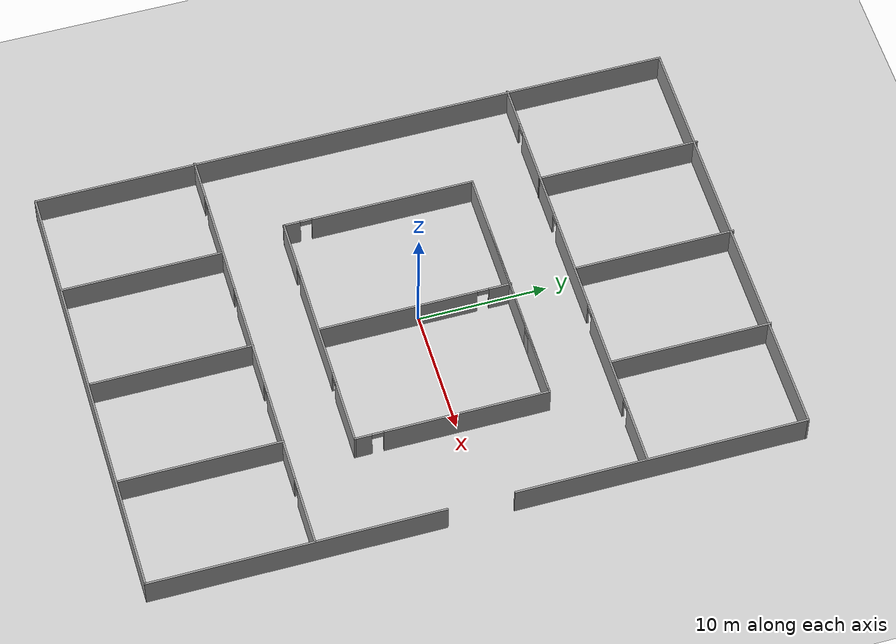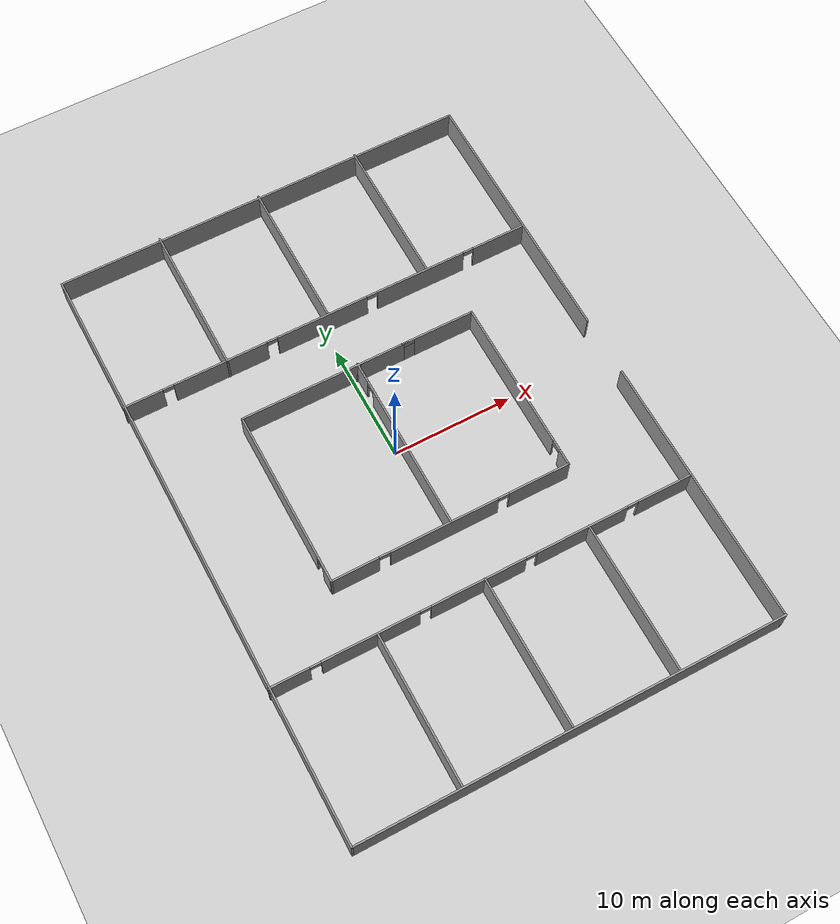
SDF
<sdf version="1.6">
 <world name="default">
  <light name="sun" type="directional">
   <pose>0 0 10 0 -0 0</pose>
   <diffuse>0.8 0.8 0.8 1</diffuse>
   <specular>0.1 0.1 0.1 1</specular>
   <attenuation>
    <range>1000</range>
    <constant>0.9</constant>
    <linear>0.01</linear>
    <quadratic>0.001</quadratic>
   </attenuation>
   <direction>-0.5 0.5 -1</direction>
  </light>
  <model name="ground_plane">
   <static>1</static>
   <link name="link">
    <collision name="collision">
     <geometry><plane><normal>0 0 1</normal><size>100 100</size></plane></geometry>
     <surface><friction><ode><mu>100</mu><mu2>50</mu2></ode></friction></surface>
    </collision>
    <visual name="visual">
     <cast_shadows>0</cast_shadows>
     <geometry><plane><normal>0 0 1</normal><size>100 100</size></plane></geometry>
     <material>
      <script><uri>file://media/materials/scripts/gazebo.material</uri><name>Gazebo/Grey</name></script>
     </material>
    </visual>
   </link>
  </model>
  <gravity>0 0 -9.8</gravity>
  <magnetic_field>6e-06 2.3e-05 -4.2e-05</magnetic_field>
  <atmosphere type="adiabatic"/>
  <physics name="default_physics" default="0" type="ode">
   <max_step_size>0.001</max_step_size>
   <real_time_factor>1</real_time_factor>
   <real_time_update_rate>1000</real_time_update_rate>
  </physics>
  <scene><ambient>0.4 0.4 0.4 1</ambient><background>0.7 0.7 0.7 1</background><shadows>1</shadows></scene>
  <spherical_coordinates>
   <surface_model>EARTH_WGS84</surface_model>
   <latitude_deg>0</latitude_deg>
   <longitude_deg>0</longitude_deg>
   <elevation>0</elevation>
   <heading_deg>0</heading_deg>
  </spherical_coordinates>
  <model name="navigation-rooms">
   <pose>0.564641 -0.417032 0 0 -0 0</pose>
   <link name="Wall_32">
    <collision name="Wall_32_Collision">
     <geometry><box><size>22.5 0.15 2.5</size></box></geometry>
     <pose>0 0 1.25 0 -0 0</pose>
    </collision>
    <visual name="Wall_32_Visual">
     <pose>0 0 1.25 0 -0 0</pose>
     <geometry><box><size>22.5 0.15 2.5</size></box></geometry>
     <material>
      <script><uri>file://media/materials/scripts/gazebo.material</uri><name>Gazebo/Grey</name></script>
      <ambient>1 1 1 1</ambient>
     </material>
    </visual>
    <pose>17.4791 13.6488 0 0 -0 1.5708</pose>
   </link>
   <link name="Wall_33">
    <collision name="Wall_33_Collision">
     <geometry><box><size>35 0.15 2.5</size></box></geometry>
     <pose>0 0 1.25 0 -0 0</pose>
    </collision>
    <visual name="Wall_33_Visual">
     <pose>0 0 1.25 0 -0 0</pose>
     <geometry><box><size>35 0.15 2.5</size></box></geometry>
     <material>
      <script><uri>file://media/materials/scripts/gazebo.material</uri><name>Gazebo/Grey</name></script>
      <ambient>1 1 1 1</ambient>
     </material>
    </visual>
    <pose>0.054081 24.8238 0 0 -0 3.14159</pose>
   </link>
   <link name="Wall_34">
    <collision name="Wall_34_Collision">
     <geometry><box><size>50 0.15 2.5</size></box></geometry>
     <pose>0 0 1.25 0 -0 0</pose>
    </collision>
    <visual name="Wall_34_Visual">
     <pose>0 0 1.25 0 -0 0</pose>
     <geometry><box><size>50 0.15 2.5</size></box></geometry>
     <material>
      <script><uri>file://media/materials/scripts/gazebo.material</uri><name>Gazebo/Grey</name></script>
      <ambient>1 1 1 1</ambient>
     </material>
    </visual>
    <pose>-17.3709 -0.101245 0 0 0 -1.5708</pose>
   </link>
   <link name="Wall_35">
    <collision name="Wall_35_Collision">
     <geometry><box><size>35 0.15 2.5</size></box></geometry>
     <pose>0 0 1.25 0 -0 0</pose>
    </collision>
    <visual name="Wall_35_Visual">
     <pose>0 0 1.25 0 -0 0</pose>
     <geometry><box><size>35 0.15 2.5</size></box></geometry>
     <material>
      <script><uri>file://media/materials/scripts/gazebo.material</uri><name>Gazebo/Grey</name></script>
      <ambient>1 1 1 1</ambient>
     </material>
    </visual>
    <pose>0.054081 -25.0262 0 0 -0 0</pose>
   </link>
   <link name="Wall_36">
    <collision name="Wall_36_Collision">
     <geometry><box><size>22.5 0.15 2.5</size></box></geometry>
     <pose>0 0 1.25 0 -0 0</pose>
    </collision>
    <visual name="Wall_36_Visual">
     <pose>0 0 1.25 0 -0 0</pose>
     <geometry><box><size>22.5 0.15 2.5</size></box></geometry>
     <material>
      <script><uri>file://media/materials/scripts/gazebo.material</uri><name>Gazebo/Grey</name></script>
      <ambient>1 1 1 1</ambient>
     </material>
    </visual>
    <pose>17.4791 -13.8512 0 0 -0 1.5708</pose>
   </link>
   <link name="Wall_38">
    <pose>-0.054083 12.4759 0 0 -0 0</pose>
    <visual name="Wall_38_Visual_0">
     <pose>-15.8438 0 1.25 0 -0 0</pose>
     <geometry><box><size>3.31249 0.15 2.5</size></box></geometry>
     <material>
      <script><uri>file://media/materials/scripts/gazebo.material</uri><name>Gazebo/Grey</name></script>
      <ambient>1 1 1 1</ambient>
     </material>
    </visual>
    <collision name="Wall_38_Collision_0">
     <geometry><box><size>3.31249 0.15 2.5</size></box></geometry>
     <pose>-15.8438 0 1.25 0 -0 0</pose>
    </collision>
    <visual name="Wall_38_Visual_1">
     <pose>-9.32126 0 1.25 0 -0 0</pose>
     <geometry><box><size>7.93251 0.15 2.5</size></box></geometry>
     <material>
      <script><uri>file://media/materials/scripts/gazebo.material</uri><name>Gazebo/Grey</name></script>
      <ambient>1 1 1 1</ambient>
     </material>
    </visual>
    <collision name="Wall_38_Collision_1">
     <geometry><box><size>7.93251 0.15 2.5</size></box></geometry>
     <pose>-9.32126 0 1.25 0 -0 0</pose>
    </collision>
    <visual name="Wall_38_Visual_2">
     <pose>-0.544929 0 1.25 0 -0 0</pose>
     <geometry><box><size>7.82014 0.15 2.5</size></box></geometry>
     <material>
      <script><uri>file://media/materials/scripts/gazebo.material</uri><name>Gazebo/Grey</name></script>
      <ambient>1 1 1 1</ambient>
     </material>
    </visual>
    <collision name="Wall_38_Collision_2">
     <geometry><box><size>7.82014 0.15 2.5</size></box></geometry>
     <pose>-0.544929 0 1.25 0 -0 0</pose>
    </collision>
    <visual name="Wall_38_Visual_3">
     <pose>8.1415 0 1.25 0 -0 0</pose>
     <geometry><box><size>7.75272 0.15 2.5</size></box></geometry>
     <material>
      <script><uri>file://media/materials/scripts/gazebo.material</uri><name>Gazebo/Grey</name></script>
      <ambient>1 1 1 1</ambient>
     </material>
    </visual>
    <collision name="Wall_38_Collision_3">
     <geometry><box><size>7.75272 0.15 2.5</size></box></geometry>
     <pose>8.1415 0 1.25 0 -0 0</pose>
    </collision>
    <visual name="Wall_38_Visual_4">
     <pose>15.2089 0 1.25 0 -0 0</pose>
     <geometry><box><size>4.58214 0.15 2.5</size></box></geometry>
     <material>
      <script><uri>file://media/materials/scripts/gazebo.material</uri><name>Gazebo/Grey</name></script>
      <ambient>1 1 1 1</ambient>
     </material>
    </visual>
    <collision name="Wall_38_Collision_4">
     <geometry><box><size>4.58214 0.15 2.5</size></box></geometry>
     <pose>15.2089 0 1.25 0 -0 0</pose>
    </collision>
    <visual name="Wall_38_Visual_5">
     <pose>-13.7375 0 2.25 0 -0 0</pose>
     <geometry><box><size>0.9 0.15 0.5</size></box></geometry>
     <material>
      <script><uri>file://media/materials/scripts/gazebo.material</uri><name>Gazebo/Grey</name></script>
      <ambient>1 1 1 1</ambient>
     </material>
    </visual>
    <collision name="Wall_38_Collision_5">
     <geometry><box><size>0.9 0.15 0.5</size></box></geometry>
     <pose>-13.7375 0 2.25 0 -0 0</pose>
    </collision>
    <visual name="Wall_38_Visual_6">
     <pose>-4.905 0 2.25 0 -0 0</pose>
     <geometry><box><size>0.9 0.15 0.5</size></box></geometry>
     <material>
      <script><uri>file://media/materials/scripts/gazebo.material</uri><name>Gazebo/Grey</name></script>
      <ambient>1 1 1 1</ambient>
     </material>
    </visual>
    <collision name="Wall_38_Collision_6">
     <geometry><box><size>0.9 0.15 0.5</size></box></geometry>
     <pose>-4.905 0 2.25 0 -0 0</pose>
    </collision>
    <visual name="Wall_38_Visual_7">
     <pose>3.81514 0 2.25 0 -0 0</pose>
     <geometry><box><size>0.9 0.15 0.5</size></box></geometry>
     <material>
      <script><uri>file://media/materials/scripts/gazebo.material</uri><name>Gazebo/Grey</name></script>
      <ambient>1 1 1 1</ambient>
     </material>
    </visual>
    <collision name="Wall_38_Collision_7">
     <geometry><box><size>0.9 0.15 0.5</size></box></geometry>
     <pose>3.81514 0 2.25 0 -0 0</pose>
    </collision>
    <visual name="Wall_38_Visual_8">
     <pose>12.4679 0 2.25 0 -0 0</pose>
     <geometry><box><size>0.9 0.15 0.5</size></box></geometry>
     <material>
      <script><uri>file://media/materials/scripts/gazebo.material</uri><name>Gazebo/Grey</name></script>
      <ambient>1 1 1 1</ambient>
     </material>
    </visual>
    <collision name="Wall_38_Collision_8">
     <geometry><box><size>0.9 0.15 0.5</size></box></geometry>
     <pose>12.4679 0 2.25 0 -0 0</pose>
    </collision>
   </link>
   <link name="Wall_40">
    <pose>-0.033664 -12.5285 0 0 -0 0</pose>
    <visual name="Wall_40_Visual_0">
     <pose>-15.85 0 1.25 0 -0 0</pose>
     <geometry><box><size>3.29995 0.15 2.5</size></box></geometry>
     <material>
      <script><uri>file://media/materials/scripts/gazebo.material</uri><name>Gazebo/Grey</name></script>
      <ambient>1 1 1 1</ambient>
     </material>
    </visual>
    <collision name="Wall_40_Collision_0">
     <geometry><box><size>3.29995 0.15 2.5</size></box></geometry>
     <pose>-15.85 0 1.25 0 -0 0</pose>
    </collision>
    <visual name="Wall_40_Visual_1">
     <pose>-9.34594 0 1.25 0 -0 0</pose>
     <geometry><box><size>7.90824 0.15 2.5</size></box></geometry>
     <material>
      <script><uri>file://media/materials/scripts/gazebo.material</uri><name>Gazebo/Grey</name></script>
      <ambient>1 1 1 1</ambient>
     </material>
    </visual>
    <collision name="Wall_40_Collision_1">
     <geometry><box><size>7.90824 0.15 2.5</size></box></geometry>
     <pose>-9.34594 0 1.25 0 -0 0</pose>
    </collision>
    <visual name="Wall_40_Visual_2">
     <pose>-0.564072 0 1.25 0 -0 0</pose>
     <geometry><box><size>7.85549 0.15 2.5</size></box></geometry>
     <material>
      <script><uri>file://media/materials/scripts/gazebo.material</uri><name>Gazebo/Grey</name></script>
      <ambient>1 1 1 1</ambient>
     </material>
    </visual>
    <collision name="Wall_40_Collision_2">
     <geometry><box><size>7.85549 0.15 2.5</size></box></geometry>
     <pose>-0.564072 0 1.25 0 -0 0</pose>
    </collision>
    <visual name="Wall_40_Visual_3">
     <pose>8.1211 0 1.25 0 -0 0</pose>
     <geometry><box><size>7.71484 0.15 2.5</size></box></geometry>
     <material>
      <script><uri>file://media/materials/scripts/gazebo.material</uri><name>Gazebo/Grey</name></script>
      <ambient>1 1 1 1</ambient>
     </material>
    </visual>
    <collision name="Wall_40_Collision_3">
     <geometry><box><size>7.71484 0.15 2.5</size></box></geometry>
     <pose>8.1211 0 1.25 0 -0 0</pose>
    </collision>
    <visual name="Wall_40_Visual_4">
     <pose>15.1893 0 1.25 0 -0 0</pose>
     <geometry><box><size>4.62148 0.15 2.5</size></box></geometry>
     <material>
      <script><uri>file://media/materials/scripts/gazebo.material</uri><name>Gazebo/Grey</name></script>
      <ambient>1 1 1 1</ambient>
     </material>
    </visual>
    <collision name="Wall_40_Collision_4">
     <geometry><box><size>4.62148 0.15 2.5</size></box></geometry>
     <pose>15.1893 0 1.25 0 -0 0</pose>
    </collision>
    <visual name="Wall_40_Visual_5">
     <pose>-13.7501 0 2.25 0 -0 0</pose>
     <geometry><box><size>0.9 0.15 0.5</size></box></geometry>
     <material>
      <script><uri>file://media/materials/scripts/gazebo.material</uri><name>Gazebo/Grey</name></script>
      <ambient>1 1 1 1</ambient>
     </material>
    </visual>
    <collision name="Wall_40_Collision_5">
     <geometry><box><size>0.9 0.15 0.5</size></box></geometry>
     <pose>-13.7501 0 2.25 0 -0 0</pose>
    </collision>
    <visual name="Wall_40_Visual_6">
     <pose>-4.94182 0 2.25 0 -0 0</pose>
     <geometry><box><size>0.9 0.15 0.5</size></box></geometry>
     <material>
      <script><uri>file://media/materials/scripts/gazebo.material</uri><name>Gazebo/Grey</name></script>
      <ambient>1 1 1 1</ambient>
     </material>
    </visual>
    <collision name="Wall_40_Collision_6">
     <geometry><box><size>0.9 0.15 0.5</size></box></geometry>
     <pose>-4.94182 0 2.25 0 -0 0</pose>
    </collision>
    <visual name="Wall_40_Visual_7">
     <pose>3.81367 0 2.25 0 -0 0</pose>
     <geometry><box><size>0.9 0.15 0.5</size></box></geometry>
     <material>
      <script><uri>file://media/materials/scripts/gazebo.material</uri><name>Gazebo/Grey</name></script>
      <ambient>1 1 1 1</ambient>
     </material>
    </visual>
    <collision name="Wall_40_Collision_7">
     <geometry><box><size>0.9 0.15 0.5</size></box></geometry>
     <pose>3.81367 0 2.25 0 -0 0</pose>
    </collision>
    <visual name="Wall_40_Visual_8">
     <pose>12.4285 0 2.25 0 -0 0</pose>
     <geometry><box><size>0.9 0.15 0.5</size></box></geometry>
     <material>
      <script><uri>file://media/materials/scripts/gazebo.material</uri><name>Gazebo/Grey</name></script>
      <ambient>1 1 1 1</ambient>
     </material>
    </visual>
    <collision name="Wall_40_Collision_8">
     <geometry><box><size>0.9 0.15 0.5</size></box></geometry>
     <pose>12.4285 0 2.25 0 -0 0</pose>
    </collision>
   </link>
   <link name="Wall_42">
    <collision name="Wall_42_Collision">
     <geometry><box><size>12.75 0.15 2.5</size></box></geometry>
     <pose>0 0 1.25 0 -0 0</pose>
    </collision>
    <visual name="Wall_42_Visual">
     <pose>0 0 1.25 0 -0 0</pose>
     <geometry><box><size>12.75 0.15 2.5</size></box></geometry>
     <material>
      <script><uri>file://media/materials/scripts/gazebo.material</uri><name>Gazebo/Grey</name></script>
      <ambient>1 1 1 1</ambient>
     </material>
    </visual>
    <pose>-8.83026 18.7262 0 0 0 -1.5708</pose>
   </link>
   <link name="Wall_44">
    <collision name="Wall_44_Collision">
     <geometry><box><size>12.5 0.15 2.5</size></box></geometry>
     <pose>0 0 1.25 0 -0 0</pose>
    </collision>
    <visual name="Wall_44_Visual">
     <pose>0 0 1.25 0 -0 0</pose>
     <geometry><box><size>12.5 0.15 2.5</size></box></geometry>
     <material>
      <script><uri>file://media/materials/scripts/gazebo.material</uri><name>Gazebo/Grey</name></script>
      <ambient>1 1 1 1</ambient>
     </material>
    </visual>
    <pose>8.67407 18.7805 0 0 0 -1.5708</pose>
   </link>
   <link name="Wall_46">
    <collision name="Wall_46_Collision">
     <geometry><box><size>12.5 0.15 2.5</size></box></geometry>
     <pose>0 0 1.25 0 -0 0</pose>
    </collision>
    <visual name="Wall_46_Visual">
     <pose>0 0 1.25 0 -0 0</pose>
     <geometry><box><size>12.5 0.15 2.5</size></box></geometry>
     <material>
      <script><uri>file://media/materials/scripts/gazebo.material</uri><name>Gazebo/Grey</name></script>
      <ambient>1 1 1 1</ambient>
     </material>
    </visual>
    <pose>-0.093563 18.8194 0 0 0 -1.5708</pose>
   </link>
   <link name="Wall_48">
    <collision name="Wall_48_Collision">
     <geometry><box><size>12.5 0.15 2.5</size></box></geometry>
     <pose>0 0 1.25 0 -0 0</pose>
    </collision>
    <visual name="Wall_48_Visual">
     <pose>0 0 1.25 0 -0 0</pose>
     <geometry><box><size>12.5 0.15 2.5</size></box></geometry>
     <material>
      <script><uri>file://media/materials/scripts/gazebo.material</uri><name>Gazebo/Grey</name></script>
      <ambient>1 1 1 1</ambient>
     </material>
    </visual>
    <pose>-8.84337 -18.8321 0 0 -0 1.5708</pose>
   </link>
   <link name="Wall_50">
    <collision name="Wall_50_Collision">
     <geometry><box><size>12.5 0.15 2.5</size></box></geometry>
     <pose>0 0 1.25 0 -0 0</pose>
    </collision>
    <visual name="Wall_50_Visual">
     <pose>0 0 1.25 0 -0 0</pose>
     <geometry><box><size>12.5 0.15 2.5</size></box></geometry>
     <material>
      <script><uri>file://media/materials/scripts/gazebo.material</uri><name>Gazebo/Grey</name></script>
      <ambient>1 1 1 1</ambient>
     </material>
    </visual>
    <pose>-0.087878 -18.6818 0 0 0 -1.5708</pose>
   </link>
   <link name="Wall_52">
    <collision name="Wall_52_Collision">
     <geometry><box><size>12.5 0.15 2.5</size></box></geometry>
     <pose>0 0 1.25 0 -0 0</pose>
    </collision>
    <visual name="Wall_52_Visual">
     <pose>0 0 1.25 0 -0 0</pose>
     <geometry><box><size>12.5 0.15 2.5</size></box></geometry>
     <material>
      <script><uri>file://media/materials/scripts/gazebo.material</uri><name>Gazebo/Grey</name></script>
      <ambient>1 1 1 1</ambient>
     </material>
    </visual>
    <pose>8.65003 -18.6818 0 0 0 -1.5708</pose>
   </link>
   <link name="Wall_54">
    <pose>9.88724 -0.041191 0 0 0 -1.5708</pose>
    <visual name="Wall_54_Visual_0">
     <pose>-1.13699 0 1.25 0 -0 0</pose>
     <geometry><box><size>12.726 0.15 2.5</size></box></geometry>
     <material>
      <script><uri>file://media/materials/scripts/gazebo.material</uri><name>Gazebo/Grey</name></script>
      <ambient>1 1 1 1</ambient>
     </material>
    </visual>
    <collision name="Wall_54_Collision_0">
     <geometry><box><size>12.726 0.15 2.5</size></box></geometry>
     <pose>-1.13699 0 1.25 0 -0 0</pose>
    </collision>
    <visual name="Wall_54_Visual_1">
     <pose>6.81301 0 1.25 0 -0 0</pose>
     <geometry><box><size>1.37398 0.15 2.5</size></box></geometry>
     <material>
      <script><uri>file://media/materials/scripts/gazebo.material</uri><name>Gazebo/Grey</name></script>
      <ambient>1 1 1 1</ambient>
     </material>
    </visual>
    <collision name="Wall_54_Collision_1">
     <geometry><box><size>1.37398 0.15 2.5</size></box></geometry>
     <pose>6.81301 0 1.25 0 -0 0</pose>
    </collision>
    <visual name="Wall_54_Visual_2">
     <pose>5.67602 0 2.25 0 -0 0</pose>
     <geometry><box><size>0.9 0.15 0.5</size></box></geometry>
     <material>
      <script><uri>file://media/materials/scripts/gazebo.material</uri><name>Gazebo/Grey</name></script>
      <ambient>1 1 1 1</ambient>
     </material>
    </visual>
    <collision name="Wall_54_Collision_2">
     <geometry><box><size>0.9 0.15 0.5</size></box></geometry>
     <pose>5.67602 0 2.25 0 -0 0</pose>
    </collision>
   </link>
   <link name="Wall_56">
    <pose>-0.037764 -7.46619 0 0 -0 3.14159</pose>
    <visual name="Wall_56_Visual_0">
     <pose>-7.41141 0 1.25 0 -0 0</pose>
     <geometry><box><size>5.17717 0.15 2.5</size></box></geometry>
     <material>
      <script><uri>file://media/materials/scripts/gazebo.material</uri><name>Gazebo/Grey</name></script>
      <ambient>1 1 1 1</ambient>
     </material>
    </visual>
    <collision name="Wall_56_Collision_0">
     <geometry><box><size>5.17717 0.15 2.5</size></box></geometry>
     <pose>-7.41141 0 1.25 0 -0 0</pose>
    </collision>
    <visual name="Wall_56_Visual_1">
     <pose>0.599768 0 1.25 0 -0 0</pose>
     <geometry><box><size>9.04519 0.15 2.5</size></box></geometry>
     <material>
      <script><uri>file://media/materials/scripts/gazebo.material</uri><name>Gazebo/Grey</name></script>
      <ambient>1 1 1 1</ambient>
     </material>
    </visual>
    <collision name="Wall_56_Collision_1">
     <geometry><box><size>9.04519 0.15 2.5</size></box></geometry>
     <pose>0.599768 0 1.25 0 -0 0</pose>
    </collision>
    <visual name="Wall_56_Visual_2">
     <pose>8.01118 0 1.25 0 -0 0</pose>
     <geometry><box><size>3.97763 0.15 2.5</size></box></geometry>
     <material>
      <script><uri>file://media/materials/scripts/gazebo.material</uri><name>Gazebo/Grey</name></script>
      <ambient>1 1 1 1</ambient>
     </material>
    </visual>
    <collision name="Wall_56_Collision_2">
     <geometry><box><size>3.97763 0.15 2.5</size></box></geometry>
     <pose>8.01118 0 1.25 0 -0 0</pose>
    </collision>
    <visual name="Wall_56_Visual_3">
     <pose>-4.37283 0 2.25 0 -0 0</pose>
     <geometry><box><size>0.9 0.15 0.5</size></box></geometry>
     <material>
      <script><uri>file://media/materials/scripts/gazebo.material</uri><name>Gazebo/Grey</name></script>
      <ambient>1 1 1 1</ambient>
     </material>
    </visual>
    <collision name="Wall_56_Collision_3">
     <geometry><box><size>0.9 0.15 0.5</size></box></geometry>
     <pose>-4.37283 0 2.25 0 -0 0</pose>
    </collision>
    <visual name="Wall_56_Visual_4">
     <pose>5.57236 0 2.25 0 -0 0</pose>
     <geometry><box><size>0.9 0.15 0.5</size></box></geometry>
     <material>
      <script><uri>file://media/materials/scripts/gazebo.material</uri><name>Gazebo/Grey</name></script>
      <ambient>1 1 1 1</ambient>
     </material>
    </visual>
    <collision name="Wall_56_Collision_4">
     <geometry><box><size>0.9 0.15 0.5</size></box></geometry>
     <pose>5.57236 0 2.25 0 -0 0</pose>
    </collision>
   </link>
   <link name="Wall_57">
    <pose>-9.96276 -0.041191 0 0 -0 1.5708</pose>
    <visual name="Wall_57_Visual_0">
     <pose>-6.83518 0 1.25 0 -0 0</pose>
     <geometry><box><size>1.32965 0.15 2.5</size></box></geometry>
     <material>
      <script><uri>file://media/materials/scripts/gazebo.material</uri><name>Gazebo/Grey</name></script>
      <ambient>1 1 1 1</ambient>
     </material>
    </visual>
    <collision name="Wall_57_Collision_0">
     <geometry><box><size>1.32965 0.15 2.5</size></box></geometry>
     <pose>-6.83518 0 1.25 0 -0 0</pose>
    </collision>
    <visual name="Wall_57_Visual_1">
     <pose>1.11482 0 1.25 0 -0 0</pose>
     <geometry><box><size>12.7704 0.15 2.5</size></box></geometry>
     <material>
      <script><uri>file://media/materials/scripts/gazebo.material</uri><name>Gazebo/Grey</name></script>
      <ambient>1 1 1 1</ambient>
     </material>
    </visual>
    <collision name="Wall_57_Collision_1">
     <geometry><box><size>12.7704 0.15 2.5</size></box></geometry>
     <pose>1.11482 0 1.25 0 -0 0</pose>
    </collision>
    <visual name="Wall_57_Visual_2">
     <pose>-5.72035 0 2.25 0 -0 0</pose>
     <geometry><box><size>0.9 0.15 0.5</size></box></geometry>
     <material>
      <script><uri>file://media/materials/scripts/gazebo.material</uri><name>Gazebo/Grey</name></script>
      <ambient>1 1 1 1</ambient>
     </material>
    </visual>
    <collision name="Wall_57_Collision_2">
     <geometry><box><size>0.9 0.15 0.5</size></box></geometry>
     <pose>-5.72035 0 2.25 0 -0 0</pose>
    </collision>
   </link>
   <link name="Wall_58">
    <collision name="Wall_58_Collision">
     <geometry><box><size>20 0.15 2.5</size></box></geometry>
     <pose>0 0 1.25 0 -0 0</pose>
    </collision>
    <visual name="Wall_58_Visual">
     <pose>0 0 1.25 0 -0 0</pose>
     <geometry><box><size>20 0.15 2.5</size></box></geometry>
     <material>
      <script><uri>file://media/materials/scripts/gazebo.material</uri><name>Gazebo/Grey</name></script>
      <ambient>1 1 1 1</ambient>
     </material>
    </visual>
    <pose>-0.037764 7.38381 0 0 -0 0</pose>
   </link>
   <link name="Wall_59">
    <pose>-0.037764 7.38381 0 0 -0 3.14159</pose>
    <visual name="Wall_59_Visual_0">
     <pose>-7.4188 0 1.25 0 -0 0</pose>
     <geometry><box><size>5.16239 0.15 2.5</size></box></geometry>
     <material>
      <script><uri>file://media/materials/scripts/gazebo.material</uri><name>Gazebo/Grey</name></script>
      <ambient>1 1 1 1</ambient>
     </material>
    </visual>
    <collision name="Wall_59_Collision_0">
     <geometry><box><size>5.16239 0.15 2.5</size></box></geometry>
     <pose>-7.4188 0 1.25 0 -0 0</pose>
    </collision>
    <visual name="Wall_59_Visual_1">
     <pose>0.621934 0 1.25 0 -0 0</pose>
     <geometry><box><size>9.11908 0.15 2.5</size></box></geometry>
     <material>
      <script><uri>file://media/materials/scripts/gazebo.material</uri><name>Gazebo/Grey</name></script>
      <ambient>1 1 1 1</ambient>
     </material>
    </visual>
    <collision name="Wall_59_Collision_1">
     <geometry><box><size>9.11908 0.15 2.5</size></box></geometry>
     <pose>0.621934 0 1.25 0 -0 0</pose>
    </collision>
    <visual name="Wall_59_Visual_2">
     <pose>8.04074 0 1.25 0 -0 0</pose>
     <geometry><box><size>3.91852 0.15 2.5</size></box></geometry>
     <material>
      <script><uri>file://media/materials/scripts/gazebo.material</uri><name>Gazebo/Grey</name></script>
      <ambient>1 1 1 1</ambient>
     </material>
    </visual>
    <collision name="Wall_59_Collision_2">
     <geometry><box><size>3.91852 0.15 2.5</size></box></geometry>
     <pose>8.04074 0 1.25 0 -0 0</pose>
    </collision>
    <visual name="Wall_59_Visual_3">
     <pose>-4.38761 0 2.25 0 -0 0</pose>
     <geometry><box><size>0.9 0.15 0.5</size></box></geometry>
     <material>
      <script><uri>file://media/materials/scripts/gazebo.material</uri><name>Gazebo/Grey</name></script>
      <ambient>1 1 1 1</ambient>
     </material>
    </visual>
    <collision name="Wall_59_Collision_3">
     <geometry><box><size>0.9 0.15 0.5</size></box></geometry>
     <pose>-4.38761 0 2.25 0 -0 0</pose>
    </collision>
    <visual name="Wall_59_Visual_4">
     <pose>5.63148 0 2.25 0 -0 0</pose>
     <geometry><box><size>0.9 0.15 0.5</size></box></geometry>
     <material>
      <script><uri>file://media/materials/scripts/gazebo.material</uri><name>Gazebo/Grey</name></script>
      <ambient>1 1 1 1</ambient>
     </material>
    </visual>
    <collision name="Wall_59_Collision_4">
     <geometry><box><size>0.9 0.15 0.5</size></box></geometry>
     <pose>5.63148 0 2.25 0 -0 0</pose>
    </collision>
   </link>
   <link name="Wall_61">
    <pose>-0.098157 0.039233 0 0 0 -1.5708</pose>
    <visual name="Wall_61_Visual_0">
     <pose>-6.59397 0 1.25 0 -0 0</pose>
     <geometry><box><size>1.81206 0.15 2.5</size></box></geometry>
     <material>
      <script><uri>file://media/materials/scripts/gazebo.material</uri><name>Gazebo/Grey</name></script>
      <ambient>1 1 1 1</ambient>
     </material>
    </visual>
    <collision name="Wall_61_Collision_0">
     <geometry><box><size>1.81206 0.15 2.5</size></box></geometry>
     <pose>-6.59397 0 1.25 0 -0 0</pose>
    </collision>
    <visual name="Wall_61_Visual_1">
     <pose>1.35603 0 1.25 0 -0 0</pose>
     <geometry><box><size>12.2879 0.15 2.5</size></box></geometry>
     <material>
      <script><uri>file://media/materials/scripts/gazebo.material</uri><name>Gazebo/Grey</name></script>
      <ambient>1 1 1 1</ambient>
     </material>
    </visual>
    <collision name="Wall_61_Collision_1">
     <geometry><box><size>12.2879 0.15 2.5</size></box></geometry>
     <pose>1.35603 0 1.25 0 -0 0</pose>
    </collision>
    <visual name="Wall_61_Visual_2">
     <pose>-5.23794 0 2.25 0 -0 0</pose>
     <geometry><box><size>0.9 0.15 0.5</size></box></geometry>
     <material>
      <script><uri>file://media/materials/scripts/gazebo.material</uri><name>Gazebo/Grey</name></script>
      <ambient>1 1 1 1</ambient>
     </material>
    </visual>
    <collision name="Wall_61_Collision_2">
     <geometry><box><size>0.9 0.15 0.5</size></box></geometry>
     <pose>-5.23794 0 2.25 0 -0 0</pose>
    </collision>
   </link>
   <static>1</static>
  </model>
 </world>
</sdf>
